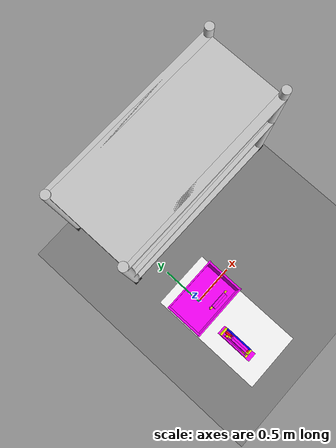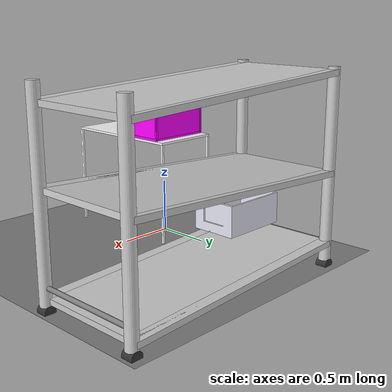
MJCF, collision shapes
<mujoco model="vccd_write">
    <option timestep="0.0001">

    </option>

    <compiler meshdir="../../meshes/VCCD" angle="radian" eulerseq="zyx"/>
    <asset>
        <texture type="2d" name="groundplane" builtin="checker" mark="edge" rgb1="0.5 0.5 0.5" rgb2="0.5 0.5 0.5"
                markrgb="0.3 0.3 0.3" width="300" height="300"/>
        <material name="groundplane" texture="groundplane" texuniform="true" texrepeat="2 2"/>
        <material name="red_light" rgba="1.0 0.0 0.0 1.0" emission="1.0" />
        <material name="green_light" rgba="0.0 1.0 0.0 1.0" emission="1.0"/>
        <material name="yellow_light" rgba="1.0 1.0 0.0 1.0" emission="1.0" />
        <mesh name="VCCD" file="vccd.stl" scale="1 1 1"/>
        <mesh name="vccd_board" file="vccd_test.stl" scale="1 1 1"/>
        <mesh name="material_box" file="material_box.STL" scale="1 1 1"/>

    </asset>
    <visual>
        <headlight diffuse="1.2 1.2 1.2" ambient="0.3 0.3 0.3" specular="0 0 0"/>
        <rgba haze="0.15 0.25 0.35 1"/>
        <global azimuth="90" elevation="-20"/>
        <quality shadowsize="8192"/>
    </visual>
    <worldbody>
        <light pos="2.058333333 1.275 3" dir="0 0 -1" directional="false"   diffuse=".2 .2 .2"/>
        <light pos="-2.058333333 1.275 3" dir="0 0 -1" directional="false"  diffuse=".2 .2 .2"/>
        <light pos="2.058333333 -1.275 3" dir="0 0 -1" directional="false"  diffuse=".2 .2 .2"/>
        <light pos="-2.058333333 -1.275 3" dir="0 0 -1" directional="false" diffuse=".2 .2 .2"/>
        <light pos="-.225 1.5 3" dir="0 0 -1" directional="false"           diffuse=".2 .2 .2"/>
        <geom name="ground" pos="0 0 0" size="1.98 1.79 0.005" type="plane" material="groundplane" condim="1"/>

        <body name="VCCD" pos="-0.1 -0.52 0.975" euler="-3.14 0 1.57">
            <geom type="mesh" mesh="VCCD"  contype="0" conaffinity="0" rgba="0.2 0.2 0.2 0.7"/>
            <geom type="box" pos="0.02544 0 0.015" size="0.005 0.08 0.088" rgba="1 0 1 1" friction="0.5 0.0 0.0"/>
            <geom type="box" pos="0.038 0.001 0.015" size="0.008 0.08 0.15" rgba="1 0 1 1" friction="0.5 0.0 0.0"/>
            <geom type="box" pos="-0.042 0.001 0.015" size="0.008 0.08 0.15" rgba="0 0 1 1" friction="0.5 0.0 0.0"/>
            <geom type="box" pos="-0.03075 0 0" size="0.005 0.08 0.1" rgba="1 0 1 1" friction="0.5 0.0 0.0"/>
            <geom type="box" pos="-0.02 0.0024 0.015" size="0.007 0.025 0.08" rgba="1 0 0 1" friction="0.5 0.0 0.0"/>
            <geom type="box" pos="0.013 0.02717 0.12" size="0.01 0.02 0.01" rgba="1 1 0 1"/>
            <geom type="box" pos="0.02544 0.03 0.105" size="0.005 0.05 0.005" rgba="1 0 0 1"/>
            <geom type="box" pos="0.02544 0.03 0.1315" size="0.005 0.05 0.005" rgba="1 0 0 1"/>
            <geom type="box" pos="0.008 0.0082 -0.09" size="0.005 0.004 0.01" rgba="1 1 0 1"/>
            <geom type="box" pos="-0.00223 0.03 -0.083" size="0.005 0.03 0.01" rgba="1 0 1 1"/>
            <geom type="box" pos="0.02544 0.03 -0.09812" size="0.005 0.048 0.003" rgba="1 1 0 1"/>
            <geom type="box" pos="0.02544 0.03 -0.07614" size="0.005 0.048 0.003" rgba="1 1 0 1"/>
            <geom type="box" pos="0 -0.005 0" size="0.05 0.002 0.2" rgba="1 0 1 1"/>
            <geom type="box" pos="-0.0095 0.0024 -0.096" size="0.012 0.08 0.025" rgba="1 0 0 1" friction="0.5 0.0 0.0"/>
            <geom type="box" pos="-0.0095 0.0024 0.127" size="0.012 0.08 0.025" rgba="1 0 0 1" friction="0.5 0.0 0.0"/>
            <geom type="box" pos="0 0.0024 0.1738" size="0.045 0.08 0.008" rgba="1 1 0 1" friction="0.5 0.0 0.0"/>
            <geom type="box" pos="0 0.0024 -0.135" size="0.045 0.08 0.008" rgba="1 1 0 1" friction="0.5 0.0 0.0"/>
        </body>

        <body name="vccd_board" pos="0 -0.1 1.042" euler="0 0 3.14">
            <geom type="mesh" mesh="vccd_board" contype="0" conaffinity="0" rgba="0.75 0.75 0.75 1"/>
            <geom type="cylinder" pos="-0.0164 -0.008 -0.01" size="0.00651 0.005" rgba="1 0 1 0" euler="0 0 1.57"/>
            <geom type="cylinder" pos="-0.0164 -0.008 -0.080" size="0.00651 0.005" rgba="1 0 1 0" euler="0 0 1.57"/>
            <geom type="box" pos="-0.0185 0.00325 -0.01" size="0.0146 0.0064 0.01642" rgba="1 1 0 0"/>
            <geom type="box" pos="-0.0185 0.00325 -0.08" size="0.0146 0.0064 0.01642" rgba="1 1 0 0"/>
            <geom type="cylinder" pos="0.1895 -0.008 -0.045" size="0.00651 0.005" rgba="1 0 1 0" euler="0 0 1.57"/>
            <geom type="box" pos="0.191 0.00325 -0.045" size="0.0146 0.0064 0.01642" rgba="1 1 0 0"/>
            <geom type="box" pos="0.08614 0.00975 0" size="0.085 0.01625 0.0223" rgba="1 0 1 0" friction="0.5 0.0 0.0"/>
            <geom type="box" pos="0.08614 0.0161 -0.0583" size="0.085 0.0226 0.036" rgba="1 0 1 0" friction="0.5 0.0 0.0"/>
            <geom type="box" pos="0.08614 0.0045 -0.1018" size="0.085 0.011 0.0075" rgba="1 0 1 0" friction="0.5 0.0 0.0"/>

        </body>

        <body name="vccd_board_test" pos="-0.114 -0.5915 1.19" euler="1.57 0 3.14">
            <joint type="free"/>
            <geom type="mesh" mesh="vccd_board" contype="0" conaffinity="0" rgba="0.75 0.75 0.75 0"/>
            <geom type="cylinder" pos="-0.0164 -0.008 -0.01" size="0.00651 0.005" rgba="1 0 1 1" euler="0 0 1.57"/>
            <geom type="cylinder" pos="-0.0164 -0.008 -0.080" size="0.00651 0.005" rgba="1 0 1 1" euler="0 0 1.57"/>
            <geom type="box" pos="-0.0185 0.00325 -0.01" size="0.0146 0.0064 0.01642" rgba="1 1 0 1"/>
            <geom type="box" pos="-0.0185 0.00325 -0.08" size="0.0146 0.0064 0.01642" rgba="1 1 0 1"/>
            <geom type="cylinder" pos="0.1895 -0.008 -0.045" size="0.00651 0.005" rgba="1 0 1 1" euler="0 0 1.57"/>
            <geom type="box" pos="0.191 0.00325 -0.045" size="0.0146 0.0064 0.01642" rgba="1 1 0 1"/>
            <geom type="box" pos="0.08614 0.00975 0" size="0.085 0.01625 0.0223" rgba="1 0 1 1" friction="0.5 0.0 0.0"/>
            <geom type="box" pos="0.08614 0.0161 -0.0583" size="0.085 0.0226 0.036" rgba="1 0 1 1" friction="0.5 0.0 0.0"/>
            <geom type="box" pos="0.08614 0.0045 -0.1018" size="0.085 0.011 0.0075" rgba="1 0 1 1" friction="0.5 0.0 0.0"/>

        </body>

        <body name="material" pos="0 0.01 0.975">
            <geom type="mesh" mesh="material_box" contype="0" conaffinity="0" euler="0 0 1.57" rgba="0.9 0.9 0.95 1"/>
            <geom type="box" pos="0 0 0" size="0.3 0.2 0.01" rgba="1 0 1 0"/>
            <geom type="box" pos="0 0.192 0.14" size="0.3 0.007 0.14" rgba="1 0 1 0"/>
            <geom type="box" pos="0 -0.192 0.14" size="0.3 0.007 0.14" rgba="1 0 1 0"/>
            <geom type="box" pos="0.286 0 0.14" size="0.01 0.2 0.14" rgba="1 0 1 0"/>
            <geom type="box" pos="-0.286 0 0.14" size="0.01 0.2 0.14" rgba="1 0 1 0"/>
        </body>

        <body name="table" pos="0 -0.3 0" euler="0 0 0">
            <geom type="box" pos="0 0 0.955" size="0.31 0.6 0.01" rgba="1 1 1 1"/>
            <geom type="box" pos="0.3 0.59 0.4725" size="0.01 0.01 0.4725" rgba="1 1 1 1"/>
            <geom type="box" pos="-0.3 0.59 0.4725" size="0.01 0.01 0.4725" rgba="1 1 1 1"/>
            <geom type="box" pos="0.3 -0.59 0.4725" size="0.01 0.01 0.4725" rgba="1 1 1 1"/>
            <geom type="box" pos="-0.3 -0.59 0.4725" size="0.01 0.01 0.4725" rgba="1 1 1 1"/>
        </body>

        <body name="rack" pos="0.8 1.2 0.05">
            <!-- 四根立柱 -->
            <geom type="cylinder" size="0.05 0.825" pos="-1.1 -0.475 0.825" rgba="0.8 0.8 0.8 1"/>
            <geom type="cylinder" size="0.05 0.825" pos="-1.1 0.475 0.825" rgba="0.8 0.8 0.8 1"/>
            <geom type="cylinder" size="0.05 0.825" pos="1.1 -0.475 0.825" rgba="0.8 0.8 0.8 1"/>
            <geom type="cylinder" size="0.05 0.825" pos="1.1 0.475 0.825" rgba="0.8 0.8 0.8 1"/>

            <!-- 三层横梁 -->
            <geom type="box" size="1.1 0.05 0.025" pos="0 -0.475 1.55" euler="0 0.05 0" rgba="0.8 0.8 0.8 1"/>
            <geom type="box" size="1.1 0.05 0.025" pos="0 0.475 1.55" euler="0 0.05 0" rgba="0.8 0.8 0.8 1"/>
            <geom type="box" size="1.1 0.05 0.025" pos="0 -0.475 0.825" euler="0 -0.05 0" rgba="0.8 0.8 0.8 1"/>
            <geom type="box" size="1.1 0.05 0.025" pos="0 0.475 0.825" euler="0 -0.05 0" rgba="0.8 0.8 0.8 1"/>
            <geom type="box" size="1.1 0.05 0.025" pos="0 -0.475 0.1" euler="0 0.05 0" rgba="0.8 0.8 0.8 1"/>
            <geom type="box" size="1.1 0.05 0.025" pos="0 0.475 0.1" euler="0 0.05 0" rgba="0.8 0.8 0.8 1"/>

            <!-- 挡板 -->
            <geom type="cylinder" size="0.02 0.475" pos="1.1 0 0.15" euler="0 0 1.57" rgba="0.5 0.5 0.5 1"/>
            <!-- 滚珠轨道 -->
            <body name="rollers" pos="0 0 0">
                <!-- 第一层 -->
                <geom type="box" size="1.1 0.475 0.025" pos="0 0 0.1" euler="0 0.05 0" rgba="0.8 0.8 0.8 1" friction="0.02 0.0 0.0"/>

                <!-- 第二层 -->
                <geom type="box" size="1.1 0.475 0.025" pos="0 0 0.825" euler="0 -0.05 0" rgba="0.8 0.8 0.8 1" friction="0.02 0.0 0.0"/>

                <!-- 第三层 -->
                <geom type="box" size="1.1 0.475 0.025" pos="0 0 1.55" euler="0 0.05 0" rgba="0.8 0.8 0.8 1" friction="0.02 0.0 0.0"/>
            </body>
            <geom type="cylinder" size="0.05 0.05" pos="-1.1 -0.475 -0.04" euler="0 0 1.57" rgba="0.2 0.2 0.2 1"/>
            <geom type="cylinder" size="0.05 0.05" pos="-1.1 0.475 -0.04" euler="0 0 1.57" rgba="0.2 0.2 0.2 1"/>
            <geom type="cylinder" size="0.05 0.05" pos="1.1 -0.475 -0.04" euler="0 0 1.57" rgba="0.2 0.2 0.2 1"/>
            <geom type="cylinder" size="0.05 0.05" pos="1.1 0.475 -0.04" euler="0 0 1.57" rgba="0.2 0.2 0.2 1"/>
        </body>

        <body name="material_rack" pos="0.2 1.1 0.35">
            <joint type="free"/>
            <geom type="mesh" mesh="material_box" euler="0 0 1.57" rgba="0.9 0.9 0.95 1" friction="0.02 0.0 0.0"/>
        </body>

    </worldbody>

</mujoco>
